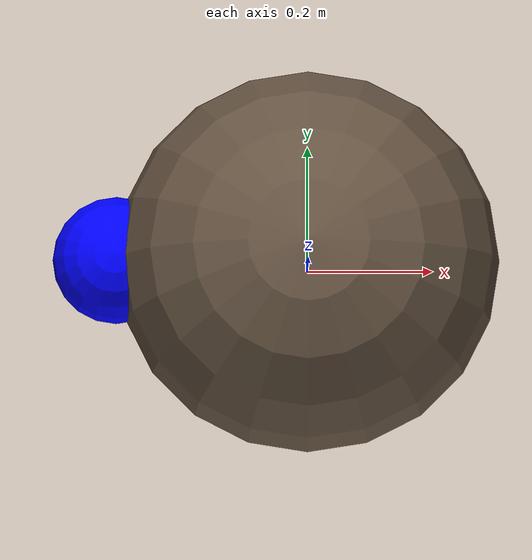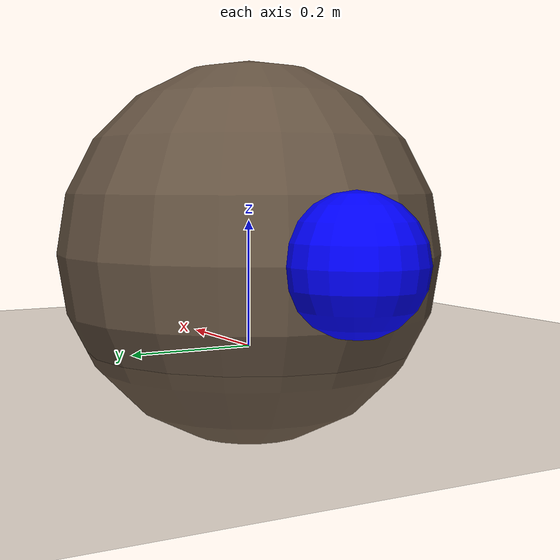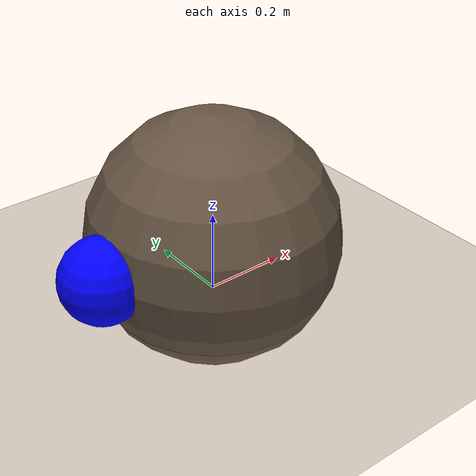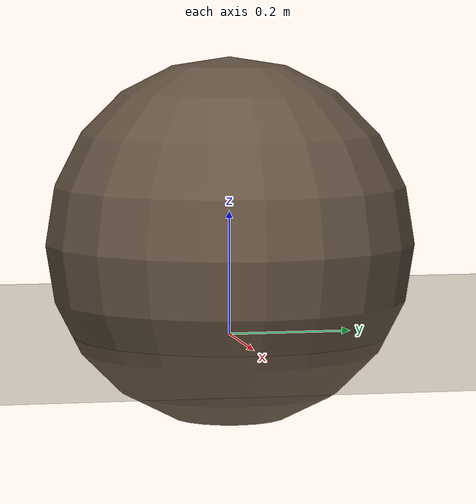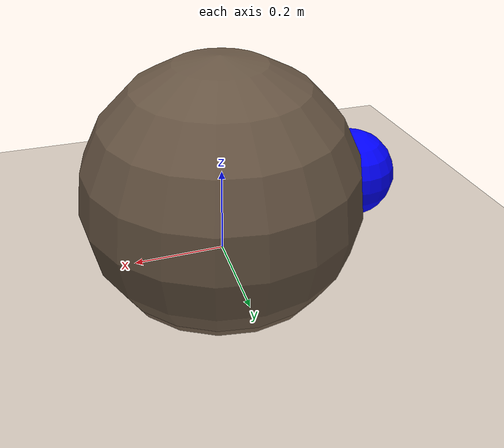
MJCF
<mujoco model="fish">
  <compiler angle="degree" coordinate="local" inertiafromgeom="true"/>
  <option timestep="0.01" iterations="4" />
  <custom>
    <!-- brax custom params -->
    <numeric data="0.0 0.0 0.0 0.0 0.0" name="init_qpos"/>
    <numeric data="1000" name="constraint_limit_stiffness"/>
    <numeric data="4000" name="constraint_stiffness"/>
    <numeric data="10" name="constraint_ang_damping"/>
    <numeric data="20" name="constraint_vel_damping"/>
    <numeric data="0.5" name="joint_scale_pos"/>
    <numeric data="0.2" name="joint_scale_ang"/>
    <numeric data="0.0" name="ang_damping"/>
    <numeric data="1" name="spring_mass_scale"/>
    <numeric data="1" name="spring_inertia_scale"/>
    <numeric data="15" name="solver_maxls"/>
  </custom>
  <default>
    <joint armature="1" damping="1" limited="true"/>
    <geom contype="0" conaffinity="0" condim="3" density="5.0" friction="1 0.5 0.5" rgba="0.4 0.33 0.26 1.0"/>
  </default>
  <asset>
    <texture builtin="gradient" height="100" rgb1="1 1 1" rgb2="0 0 0" type="skybox" width="100"/>
    <texture builtin="flat" height="1278" mark="cross" markrgb="1 1 1" name="texgeom" random="0.01" rgb1="0.8 0.6 0.4" rgb2="0.8 0.6 0.4" type="cube" width="127"/>
    <texture builtin="checker" height="100" name="texplane" rgb1="0 0 0" rgb2="0.8 0.8 0.8" type="2d" width="100"/>
    <material name="MatPlane" reflectance="0.5" shininess="1" specular="1" texrepeat="60 60" texture="texplane"/>
    <material name="geom" texture="texgeom" texuniform="true"/>
  </asset>
  <worldbody>
    <light cutoff="100" diffuse="1 1 1" dir="-0 0 -1.3" directional="true" exponent="1" pos="0 0 1.3" specular=".1 .1 .1"/>
    <geom conaffinity="1" condim="3" material="MatPlane" name="floor" pos="0 0 0" size="4000 4000 40" type="plane"/>
    <body name="torso" pos="0 0 0.15">
      <geom name="torso_geom" size="0.3" type="sphere"/>
      <joint axis="1 0 0"  name="move_joint_x" pos="0 0 0" range="-180 180" type="slide"/>
      <joint axis="0 1 0"  name="move_joint_y" pos="0 0 0" range="-180 180" type="slide"/>
      <joint axis="0 0 1"  name="rotate_joint" pos="0 0 0" range="-360 360" type="hinge"/>

      <!-- Sphere 1 (Wobbling behind the torso using a single hinge) -->
      <body name="sphere_1" pos="-0.15 0 0">
        <geom name="sphere_1_geom" size="0.1" type="sphere" contype="1" conaffinity="1" condim="3" rgba="0 0 1 1"/> <!-- Blue color -->
        <joint axis="0 1 0" name="sphere1_wobble" type="hinge" damping="0.002" stiffness="1" range="-20 20"/> <!-- Hinge allows rotation around Y-axis -->
      </body>

      <!-- Sphere 2 (Wobbling further behind the torso using a single hinge) -->
      <body name="sphere_2" pos="-0.3 0 0">
        <geom name="sphere_2_geom" size="0.1" type="sphere" contype="1" conaffinity="1" condim="3" rgba="0 0 1 1"/> <!-- Blue color -->
        <joint axis="0 1 0" name="sphere2_wobble" type="hinge" damping="0.002" stiffness="1" range="-20 20"/> <!-- Hinge allows rotation around Y-axis -->
      </body>

    </body>
  </worldbody>
  <actuator>
    <motor ctrllimited="true" ctrlrange="0 1.0" joint="move_joint_x" gear="50.0" forcelimited="true" forcerange="0 0.1"/>
    <motor ctrllimited="true" ctrlrange="0 1.0" joint="rotate_joint" gear="5.0" forcelimited="true" forcerange="0.0 0.1"/>
  </actuator>

</mujoco>
